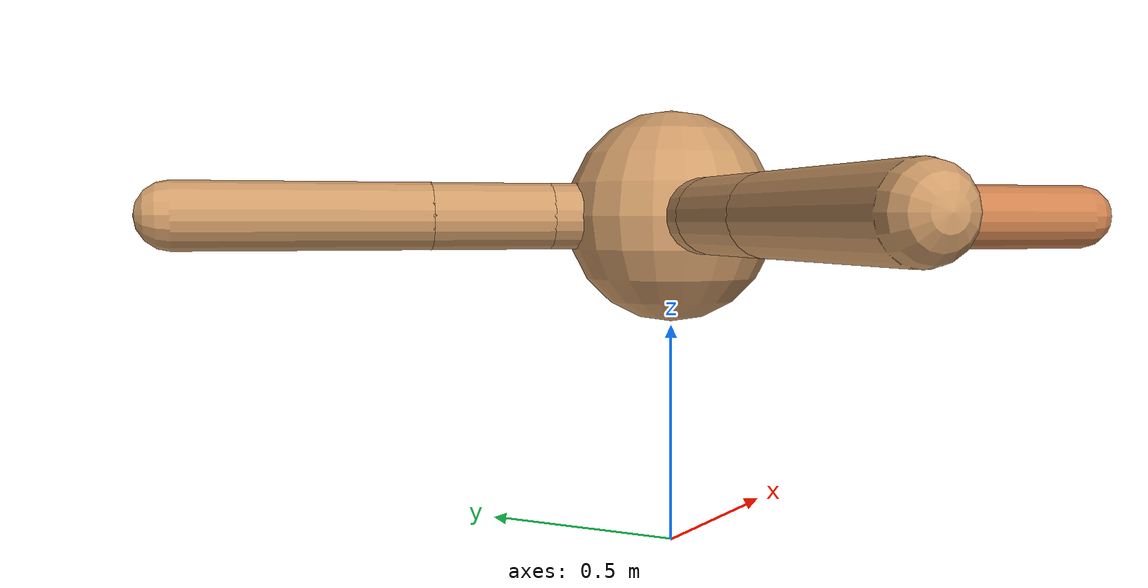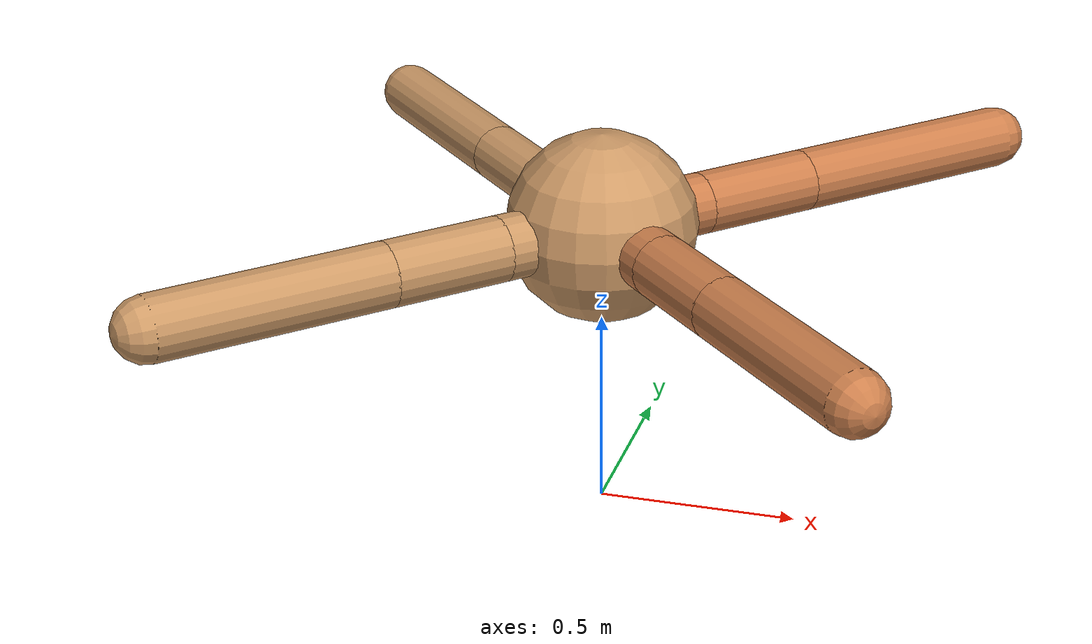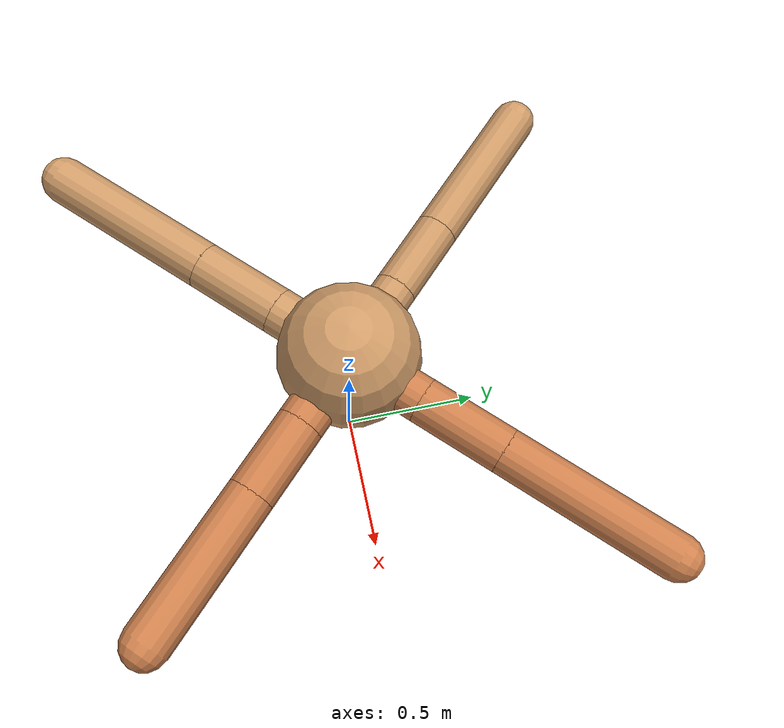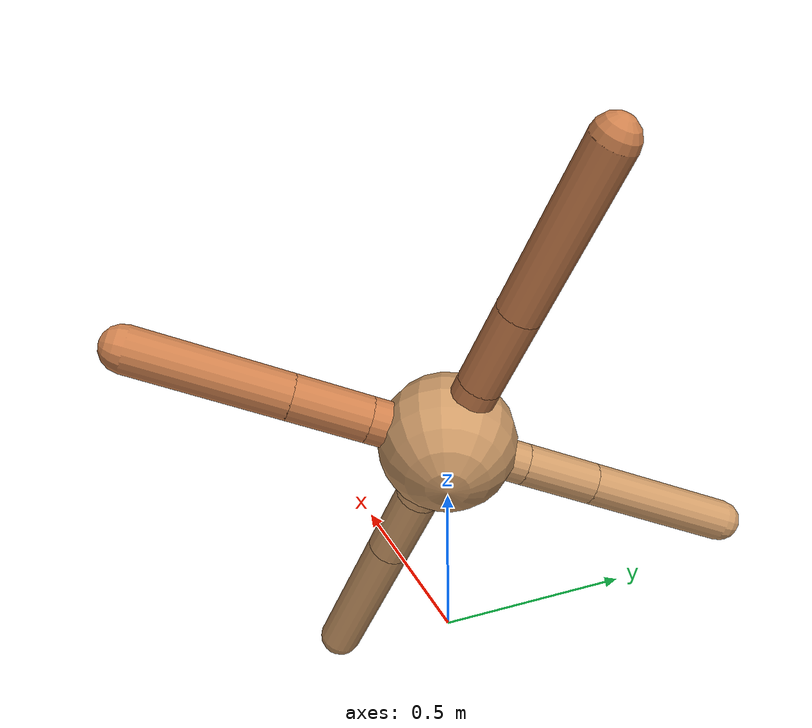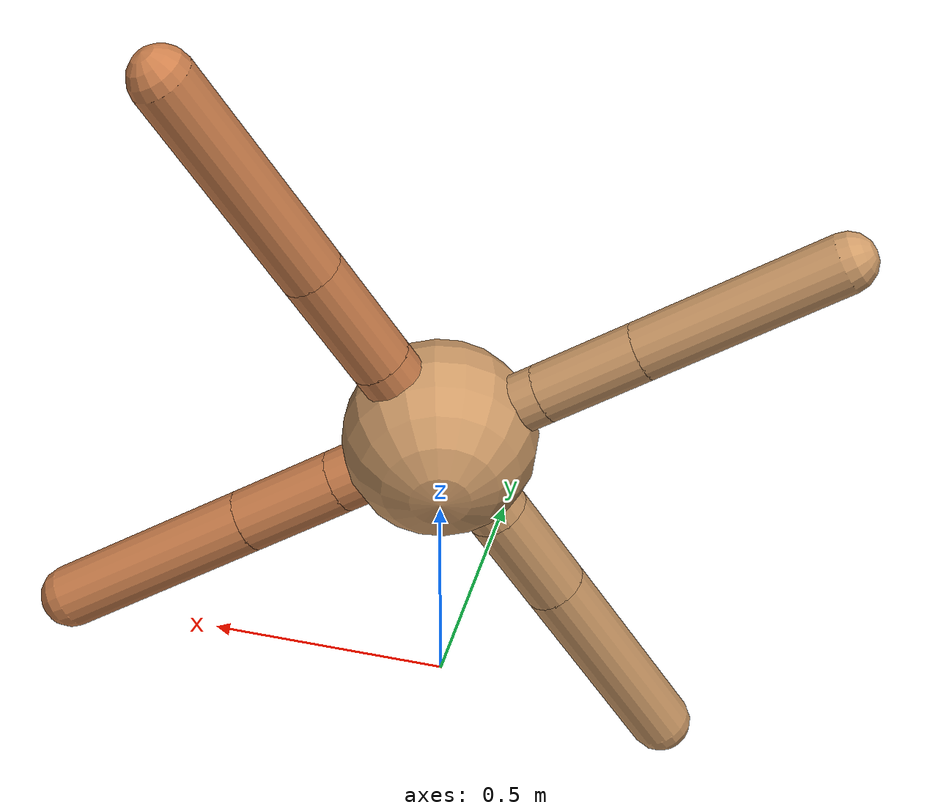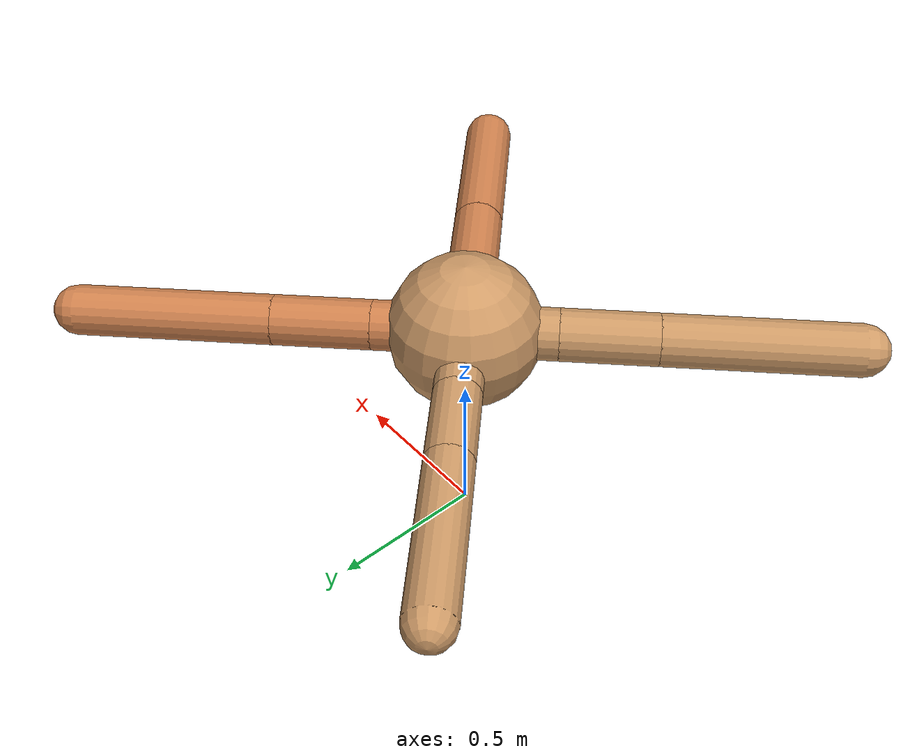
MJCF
<?xml version="1.0" ?>
<mujoco model="ant">

	<compiler angle="degree" coordinate="local" inertiafromgeom="true"/>

	<option integrator="RK4" timestep="0.01"/>

	<custom>

		<numeric data="0.0 0.0 0.55 1.0 0.0 0.0 0.0 0.0 1.0 0.0 -1.0 0.0 -1.0 0.0 1.0" name="init_qpos"/>

	</custom>

	<default>

		<joint armature="1" damping="1" limited="true"/>

		<geom conaffinity="0" condim="3" density="5.0" friction="1.5 0.1 0.1" margin="0.01" rgba="0.8 0.6 0.4 1"/>

	</default>

	<worldbody>

		<body name="torso" pos="0 0 0.75">

			<geom name="torso_geom" pos="0 0 0" size="0.23919218670753137" type="sphere"/>

			<!--joint armature="0" damping="0" limited="false" margin="0.01" name="root" pos="0 0 0" type="free"/-->

			<body name="front_left_leg" pos="0 0 0">

				<geom fromto="0 0 0 0.2 0.2 0" name="aux_1_geom" size="0.07772650675030848" type="capsule" rgba=".8 .5 .3 1"/>

				<body name="aux_1" pos="0.2 0.2 0">

					<joint axis="0 0 1" name="hip_1" pos="0.0 0.0 0.0" range="-40 40" type="hinge"/>

					<geom fromto="0 0 0 0.21393355301293826 0.21393355301293826 0" name="left_leg_geom" size="0.07772650675030848" type="capsule" rgba=".8 .5 .3 1"/>

					<body pos="0.21393355301293826 0.21393355301293826 0" name="front_left_foot">

						<joint axis="-1 1 0" name="ankle_1" pos="0.0 0.0 0.0" range="30 100" type="hinge"/>

						<geom fromto="0 0 0 0.4278671060258765 0.4278671060258765 0" name="left_ankle_geom" size="0.07772650675030848" type="capsule" rgba=".8 .5 .3 1"/>

					</body>

				</body>

			</body>

			<body name="front_right_leg" pos="0 0 0">

				<geom fromto="0 0 0 -0.2 0.2 0" name="aux_2_geom" size="0.07326960665858369" type="capsule"/>

				<body name="aux_2" pos="-0.2 0.2 0">

					<joint axis="0 0 1" name="hip_2" pos="0.0 0.0 0.0" range="-40 40" type="hinge"/>

					<geom fromto="0 0 0 -0.18467149910906747 0.18467149910906747 0" name="right_leg_geom" size="0.07326960665858369" type="capsule"/>

					<body pos="-0.18467149910906747 0.18467149910906747 0" name="front_right_foot">

						<joint axis="1 1 0" name="ankle_2" pos="0.0 0.0 0.0" range="-100 -30" type="hinge"/>

						<geom fromto="0 0 0 -0.36934299821813493 0.36934299821813493 0" name="right_ankle_geom" size="0.07326960665858369" type="capsule"/>

					</body>

				</body>

			</body>

			<body name="left_back_leg" pos="0 0 0">

				<geom fromto="0 0 0 -0.2 -0.2 0" name="aux_3_geom" size="0.08125323161598541" type="capsule"/>

				<body name="aux_3" pos="-0.2 -0.2 0">

					<joint axis="0 0 1" name="hip_3" pos="0.0 0.0 0.0" range="-40 40" type="hinge"/>

					<geom fromto="0 0 0 -0.21239980959888222 -0.21239980959888222 0" name="back_leg_geom" size="0.08125323161598541" type="capsule"/>

					<body pos="-0.21239980959888222 -0.21239980959888222 0" name="left_back_foot">

						<joint axis="-1 1 0" name="ankle_3" pos="0.0 0.0 0.0" range="-100 -30" type="hinge"/>

						<geom fromto="0 0 0 -0.42479961919776443 -0.42479961919776443 0" name="third_ankle_geom" size="0.08125323161598541" type="capsule"/>

					</body>

				</body>

			</body>

			<body name="right_back_leg" pos="0 0 0">

				<geom fromto="0 0 0 0.2 -0.2 0" name="aux_4_geom" size="0.08011840579272782" type="capsule" rgba=".8 .5 .3 1"/>

				<body name="aux_4" pos="0.2 -0.2 0">

					<joint axis="0 0 1" name="hip_4" pos="0.0 0.0 0.0" range="-40 40" type="hinge"/>

					<geom fromto="0 0 0 0.18977164751866304 -0.18977164751866304 0" name="rightback_leg_geom" size="0.08011840579272782" type="capsule" rgba=".8 .5 .3 1"/>

					<body pos="0.18977164751866304 -0.18977164751866304 0" name="right_back_foot">

						<joint axis="1 1 0" name="ankle_4" pos="0.0 0.0 0.0" range="30 100" type="hinge"/>

						<geom fromto="0 0 0 0.3795432950373261 -0.3795432950373261 0" name="fourth_ankle_geom" size="0.08011840579272782" type="capsule" rgba=".8 .5 .3 1"/>

					</body>

				</body>

			</body>

		</body>

	</worldbody>

	<actuator>

		<motor ctrllimited="true" ctrlrange="-1.0 1.0" joint="hip_4" gear="150"/>

		<motor ctrllimited="true" ctrlrange="-1.0 1.0" joint="ankle_4" gear="150"/>

		<motor ctrllimited="true" ctrlrange="-1.0 1.0" joint="hip_1" gear="150"/>

		<motor ctrllimited="true" ctrlrange="-1.0 1.0" joint="ankle_1" gear="150"/>

		<motor ctrllimited="true" ctrlrange="-1.0 1.0" joint="hip_2" gear="150"/>

		<motor ctrllimited="true" ctrlrange="-1.0 1.0" joint="ankle_2" gear="150"/>

		<motor ctrllimited="true" ctrlrange="-1.0 1.0" joint="hip_3" gear="150"/>

		<motor ctrllimited="true" ctrlrange="-1.0 1.0" joint="ankle_3" gear="150"/>

	</actuator>

</mujoco>
